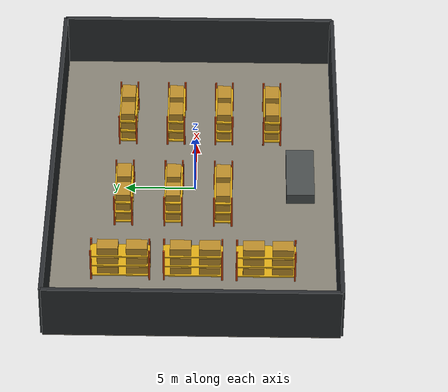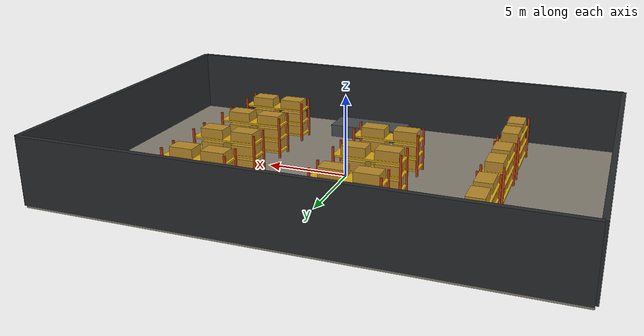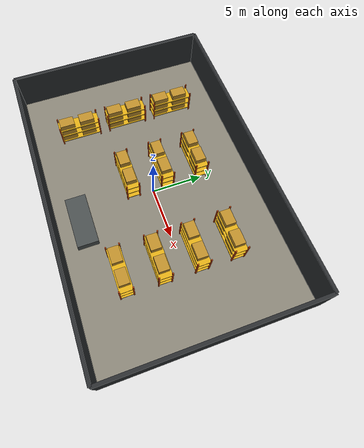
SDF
<?xml version="1.0"?>
<!-- Local detailed warehouse, designed for Gazebo Harmonic without Fuel. -->
<sdf version="1.9">
  <world name="amr_warehouse_detailed">
    <physics name="physics" type="ignored"><max_step_size>.01</max_step_size><real_time_factor>1</real_time_factor></physics>
    <plugin filename="gz-sim-physics-system" name="gz::sim::systems::Physics"/>
    <plugin filename="gz-sim-user-commands-system" name="gz::sim::systems::UserCommands"/>
    <plugin filename="gz-sim-scene-broadcaster-system" name="gz::sim::systems::SceneBroadcaster"/>
    <plugin filename="gz-sim-sensors-system" name="gz::sim::systems::Sensors"><render_engine>ogre2</render_engine></plugin>
    <plugin filename="gz-sim-imu-system" name="gz::sim::systems::Imu"/>
    <gui><camera name="warehouse_overview"><pose>0 -23 22 0 .78 1.57</pose></camera></gui>
    <scene><ambient>.55 .55 .55 1</ambient><background>.75 .75 .75 1</background><shadows>true</shadows><grid>false</grid></scene>
    <light name="sun" type="directional"><pose>0 0 12 0 0 0</pose><diffuse>.85 .85 .85 1</diffuse><direction>-.3 .2 -1</direction></light>

    <model name="warehouse_shell"><static>true</static><link name="structure">
      <collision name="floor"><pose>0 0 -.1 0 0 0</pose><geometry><box><size>30 20 .2</size></box></geometry></collision>
      <collision name="north"><pose>0 10 2 0 0 0</pose><geometry><box><size>30 .3 4</size></box></geometry></collision><collision name="south"><pose>0 -10 2 0 0 0</pose><geometry><box><size>30 .3 4</size></box></geometry></collision>
      <collision name="east"><pose>15 0 2 0 0 0</pose><geometry><box><size>.3 20 4</size></box></geometry></collision><collision name="west"><pose>-15 0 2 0 0 0</pose><geometry><box><size>.3 20 4</size></box></geometry></collision>
      <visual name="floor"><pose>0 0 -.1 0 0 0</pose><geometry><box><size>30 20 .2</size></box></geometry><material><diffuse>.52 .50 .45 1</diffuse></material></visual>
      <visual name="north"><pose>0 10 2 0 0 0</pose><geometry><box><size>30 .3 4</size></box></geometry><material><diffuse>.16 .17 .18 1</diffuse></material></visual><visual name="south"><pose>0 -10 2 0 0 0</pose><geometry><box><size>30 .3 4</size></box></geometry><material><diffuse>.16 .17 .18 1</diffuse></material></visual>
      <visual name="east"><pose>15 0 2 0 0 0</pose><geometry><box><size>.3 20 4</size></box></geometry><material><diffuse>.16 .17 .18 1</diffuse></material></visual><visual name="west"><pose>-15 0 2 0 0 0</pose><geometry><box><size>.3 20 4</size></box></geometry><material><diffuse>.16 .17 .18 1</diffuse></material></visual>
    </link></model>

    <!-- Two shipping aisles; each rack has local shelf and carton geometry. -->
    <include><uri>model://pallet_rack</uri><name>rack_left_1</name><pose>-9 5 0 0 0 1.5708</pose></include><include><uri>model://pallet_rack</uri><name>rack_left_2</name><pose>-9 0 0 0 0 1.5708</pose></include><include><uri>model://pallet_rack</uri><name>rack_left_3</name><pose>-9 -5 0 0 0 1.5708</pose></include>
    <include><uri>model://pallet_rack</uri><name>rack_center_1</name><pose>-2 5 0 0 0 0</pose></include><include><uri>model://pallet_rack</uri><name>rack_center_2</name><pose>-2 1.5 0 0 0 0</pose></include><include><uri>model://pallet_rack</uri><name>rack_center_3</name><pose>-2 -2 0 0 0 0</pose></include>
    <include><uri>model://pallet_rack</uri><name>rack_right_1</name><pose>7 5 0 0 0 0</pose></include><include><uri>model://pallet_rack</uri><name>rack_right_2</name><pose>7 1.5 0 0 0 0</pose></include><include><uri>model://pallet_rack</uri><name>rack_right_3</name><pose>7 -2 0 0 0 0</pose></include>
    <include><uri>model://pallet_rack</uri><name>rack_right_4</name><pose>7 -5.5 0 0 0 0</pose></include>

    <model name="loading_bay"><static>true</static><pose>1 -7.5 .4 0 0 0</pose><link name="link"><collision name="collision"><geometry><box><size>5 2 .8</size></box></geometry></collision><visual name="visual"><geometry><box><size>5 2 .8</size></box></geometry><material><diffuse>.28 .30 .30 1</diffuse></material></visual></link></model>
  </world>
</sdf>

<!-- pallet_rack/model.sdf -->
<!-- Reusable local pallet rack: orange frame, yellow decks, and cartons. -->
<sdf version="1.9">
  <model name="pallet_rack">
    <static>true</static>
    <link name="frame">
      <collision name="left_front"><pose>-2 -0.62 1.3 0 0 0</pose><geometry><box><size>.12 .12 2.6</size></box></geometry></collision>
      <collision name="left_back"><pose>-2 .62 1.3 0 0 0</pose><geometry><box><size>.12 .12 2.6</size></box></geometry></collision>
      <collision name="right_front"><pose>2 -0.62 1.3 0 0 0</pose><geometry><box><size>.12 .12 2.6</size></box></geometry></collision>
      <collision name="right_back"><pose>2 .62 1.3 0 0 0</pose><geometry><box><size>.12 .12 2.6</size></box></geometry></collision>
      <collision name="deck_low"><pose>0 0 .35 0 0 0</pose><geometry><box><size>4.1 1.25 .10</size></box></geometry></collision>
      <collision name="deck_mid"><pose>0 0 1.2 0 0 0</pose><geometry><box><size>4.1 1.25 .10</size></box></geometry></collision>
      <collision name="deck_top"><pose>0 0 2.05 0 0 0</pose><geometry><box><size>4.1 1.25 .10</size></box></geometry></collision>
      <visual name="left_front"><pose>-2 -0.62 1.3 0 0 0</pose><geometry><box><size>.12 .12 2.6</size></box></geometry><material><diffuse>.75 .25 .05 1</diffuse></material></visual>
      <visual name="left_back"><pose>-2 .62 1.3 0 0 0</pose><geometry><box><size>.12 .12 2.6</size></box></geometry><material><diffuse>.75 .25 .05 1</diffuse></material></visual>
      <visual name="right_front"><pose>2 -0.62 1.3 0 0 0</pose><geometry><box><size>.12 .12 2.6</size></box></geometry><material><diffuse>.75 .25 .05 1</diffuse></material></visual>
      <visual name="right_back"><pose>2 .62 1.3 0 0 0</pose><geometry><box><size>.12 .12 2.6</size></box></geometry><material><diffuse>.75 .25 .05 1</diffuse></material></visual>
      <visual name="deck_low"><pose>0 0 .35 0 0 0</pose><geometry><box><size>4.1 1.25 .10</size></box></geometry><material><diffuse>.86 .66 .08 1</diffuse></material></visual>
      <visual name="deck_mid"><pose>0 0 1.2 0 0 0</pose><geometry><box><size>4.1 1.25 .10</size></box></geometry><material><diffuse>.86 .66 .08 1</diffuse></material></visual>
      <visual name="deck_top"><pose>0 0 2.05 0 0 0</pose><geometry><box><size>4.1 1.25 .10</size></box></geometry><material><diffuse>.86 .66 .08 1</diffuse></material></visual>
    </link>
    <link name="cartons">
      <visual name="carton_1"><pose>-1.15 0 .68 0 0 0</pose><geometry><box><size>1.45 1.0 .58</size></box></geometry><material><diffuse>.72 .54 .16 1</diffuse></material></visual>
      <visual name="carton_2"><pose>.85 0 .68 0 0 0</pose><geometry><box><size>1.45 1.0 .58</size></box></geometry><material><diffuse>.72 .54 .16 1</diffuse></material></visual>
      <visual name="carton_3"><pose>-1.15 0 1.53 0 0 0</pose><geometry><box><size>1.45 1.0 .58</size></box></geometry><material><diffuse>.72 .54 .16 1</diffuse></material></visual>
      <visual name="carton_4"><pose>.85 0 1.53 0 0 0</pose><geometry><box><size>1.45 1.0 .58</size></box></geometry><material><diffuse>.72 .54 .16 1</diffuse></material></visual>
      <visual name="carton_5"><pose>-1.15 0 2.38 0 0 0</pose><geometry><box><size>1.45 1.0 .58</size></box></geometry><material><diffuse>.72 .54 .16 1</diffuse></material></visual>
      <visual name="carton_6"><pose>.85 0 2.38 0 0 0</pose><geometry><box><size>1.45 1.0 .58</size></box></geometry><material><diffuse>.72 .54 .16 1</diffuse></material></visual>
    </link>
  </model>
</sdf>
